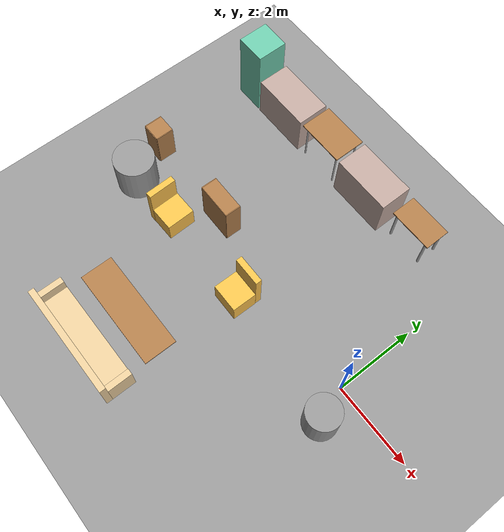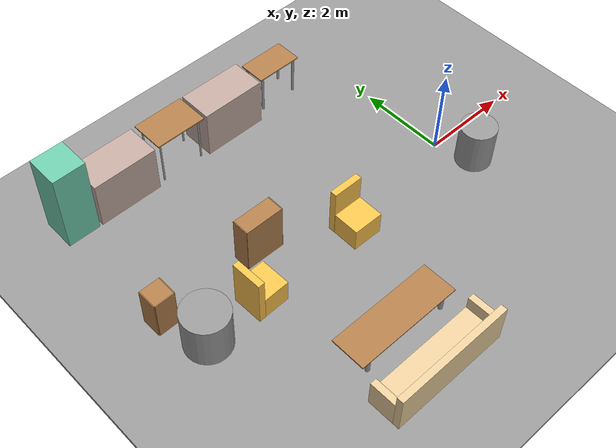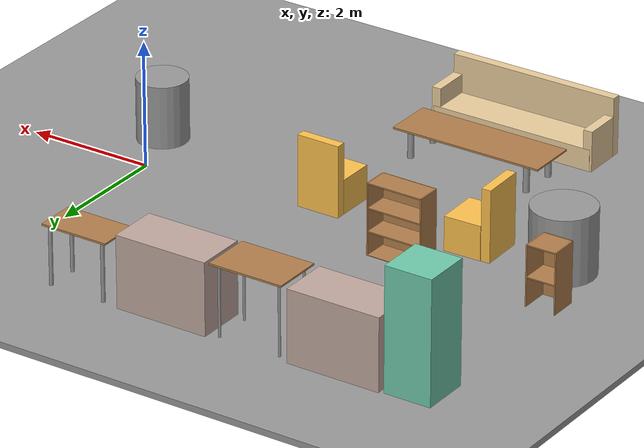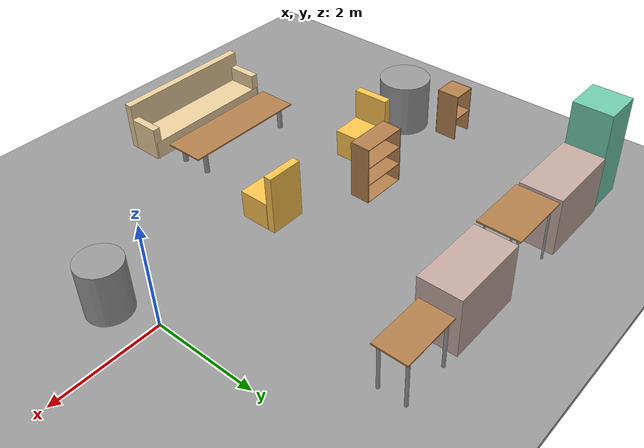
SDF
<sdf version="1.6">
 <world name="default">
  <model name="ground_plane">
   <static>1</static>
   <link name="link">
    <collision name="collision">
     <geometry><plane><normal>0 0 1</normal><size>100 100</size></plane></geometry>
     <surface><friction><ode><mu>100</mu><mu2>50</mu2></ode></friction></surface>
    </collision>
    <visual name="visual">
     <cast_shadows>0</cast_shadows>
     <geometry><plane><normal>0 0 1</normal><size>100 100</size></plane></geometry>
     <material>
      <script><uri>file://media/materials/scripts/gazebo.material</uri><name>Gazebo/Grey</name></script>
     </material>
    </visual>
   </link>
  </model>
  <model name="table_0">
   <link name="link">
    <pose>0.121367 0.101535 0 0 -0 0</pose>
    <inertial>
     <inertia><ixx>0</ixx><ixy>0</ixy><ixz>0</ixz><iyy>0</iyy><iyz>0</iyz><izz>0</izz></inertia>
     <mass>0</mass>
    </inertial>
    <visual name="visual1">
     <pose>0 0 1 0 -0 0</pose>
     <geometry><box><size>1.0961 0.633078 0.03</size></box></geometry>
     <material>
      <script><uri>file://media/materials/scripts/gazebo.material</uri><name>Gazebo/Wood</name></script>
      <shader type="pixel"><normal_map>__default__</normal_map></shader>
      <ambient>1 1 1 1</ambient>
      <diffuse>1 1 1 1</diffuse>
      <specular>0.2 0.2 0.2 1</specular>
      <emissive>0 0 0 1</emissive>
     </material>
    </visual>
    <visual name="front_right_leg">
     <pose>0.45 -0.25 0.5 0 -0 0</pose>
     <geometry><cylinder><radius>0.0304</radius><length>1</length></cylinder></geometry>
     <material>
      <script><uri>file://media/materials/scripts/gazebo.material</uri><name>Gazebo/Grey</name></script>
      <shader type="pixel"><normal_map>__default__</normal_map></shader>
      <ambient>0.3 0.3 0.3 1</ambient>
      <diffuse>0.7 0.7 0.7 1</diffuse>
      <specular>0.01 0.01 0.01 1</specular>
      <emissive>0 0 0 1</emissive>
     </material>
    </visual>
    <visual name="front_left_leg">
     <pose>0.45 0.25 0.5 0 -0 0</pose>
     <geometry><cylinder><radius>0.0304</radius><length>1</length></cylinder></geometry>
     <material>
      <script><uri>file://media/materials/scripts/gazebo.material</uri><name>Gazebo/Grey</name></script>
      <shader type="pixel"><normal_map>__default__</normal_map></shader>
      <ambient>0.3 0.3 0.3 1</ambient>
      <diffuse>0.7 0.7 0.7 1</diffuse>
      <specular>0.01 0.01 0.01 1</specular>
      <emissive>0 0 0 1</emissive>
     </material>
    </visual>
    <visual name="back_right_leg">
     <pose>-0.45 -0.25 0.5 0 -0 0</pose>
     <geometry><cylinder><radius>0.0304</radius><length>1</length></cylinder></geometry>
     <material>
      <script><uri>file://media/materials/scripts/gazebo.material</uri><name>Gazebo/Grey</name></script>
      <shader type="pixel"><normal_map>__default__</normal_map></shader>
      <ambient>0.3 0.3 0.3 1</ambient>
      <diffuse>0.7 0.7 0.7 1</diffuse>
      <specular>0.01 0.01 0.01 1</specular>
      <emissive>0 0 0 1</emissive>
     </material>
    </visual>
    <visual name="back_left_leg">
     <pose>-0.45 0.25 0.5 0 -0 0</pose>
     <geometry><cylinder><radius>0.0304</radius><length>1</length></cylinder></geometry>
     <material>
      <script><uri>file://media/materials/scripts/gazebo.material</uri><name>Gazebo/Grey</name></script>
      <shader type="pixel"><normal_map>__default__</normal_map></shader>
      <ambient>0.3 0.3 0.3 1</ambient>
      <diffuse>0.7 0.7 0.7 1</diffuse>
      <specular>0.01 0.01 0.01 1</specular>
      <emissive>0 0 0 1</emissive>
     </material>
    </visual>
    <collision name="surface">
     <pose>0 0 1 0 -0 0</pose>
     <geometry><box><size>1.0961 0.633078 0.03</size></box></geometry>
     <surface>
      <friction>
       <ode><mu>0.6</mu><mu2>0.6</mu2><fdir1>0 0 0</fdir1><slip1>0</slip1><slip2>0</slip2></ode>
       <torsional>
        <coefficient>1</coefficient>
        <patch_radius>0</patch_radius>
        <surface_radius>0</surface_radius>
        <use_patch_radius>1</use_patch_radius>
        <ode><slip>0</slip></ode>
       </torsional>
      </friction>
      <bounce><restitution_coefficient>0</restitution_coefficient><threshold>1e+06</threshold></bounce>
      <contact>
       <collide_without_contact>0</collide_without_contact>
       <collide_without_contact_bitmask>1</collide_without_contact_bitmask>
       <collide_bitmask>1</collide_bitmask>
       <ode>
        <soft_cfm>0</soft_cfm>
        <soft_erp>0.2</soft_erp>
        <kp>1e+13</kp>
        <kd>1</kd>
        <max_vel>0.01</max_vel>
        <min_depth>0</min_depth>
       </ode>
       <bullet>
        <split_impulse>1</split_impulse>
        <split_impulse_penetration_threshold>-0.01</split_impulse_penetration_threshold>
        <soft_cfm>0</soft_cfm>
        <soft_erp>0.2</soft_erp>
        <kp>1e+13</kp>
        <kd>1</kd>
       </bullet>
      </contact>
     </surface>
    </collision>
    <collision name="front_left_leg">
     <pose>0.45 0.25 0.5 0 -0 0</pose>
     <geometry><cylinder><radius>0.0304</radius><length>1</length></cylinder></geometry>
     <surface>
      <friction>
       <ode><mu>1</mu><mu2>1</mu2><fdir1>0 0 0</fdir1><slip1>0</slip1><slip2>0</slip2></ode>
       <torsional>
        <coefficient>1</coefficient>
        <patch_radius>0</patch_radius>
        <surface_radius>0</surface_radius>
        <use_patch_radius>1</use_patch_radius>
        <ode><slip>0</slip></ode>
       </torsional>
      </friction>
      <bounce><restitution_coefficient>0</restitution_coefficient><threshold>1e+06</threshold></bounce>
      <contact>
       <collide_without_contact>0</collide_without_contact>
       <collide_without_contact_bitmask>1</collide_without_contact_bitmask>
       <collide_bitmask>1</collide_bitmask>
       <ode>
        <soft_cfm>0</soft_cfm>
        <soft_erp>0.2</soft_erp>
        <kp>1e+13</kp>
        <kd>1</kd>
        <max_vel>0.01</max_vel>
        <min_depth>0</min_depth>
       </ode>
       <bullet>
        <split_impulse>1</split_impulse>
        <split_impulse_penetration_threshold>-0.01</split_impulse_penetration_threshold>
        <soft_cfm>0</soft_cfm>
        <soft_erp>0.2</soft_erp>
        <kp>1e+13</kp>
        <kd>1</kd>
       </bullet>
      </contact>
     </surface>
    </collision>
    <collision name="front_right_leg">
     <pose>0.45 -0.25 0.5 0 -0 0</pose>
     <geometry><cylinder><radius>0.0304</radius><length>1</length></cylinder></geometry>
     <surface>
      <friction>
       <ode><mu>1</mu><mu2>1</mu2><fdir1>0 0 0</fdir1><slip1>0</slip1><slip2>0</slip2></ode>
       <torsional>
        <coefficient>1</coefficient>
        <patch_radius>0</patch_radius>
        <surface_radius>0</surface_radius>
        <use_patch_radius>1</use_patch_radius>
        <ode><slip>0</slip></ode>
       </torsional>
      </friction>
      <bounce><restitution_coefficient>0</restitution_coefficient><threshold>1e+06</threshold></bounce>
      <contact>
       <collide_without_contact>0</collide_without_contact>
       <collide_without_contact_bitmask>1</collide_without_contact_bitmask>
       <collide_bitmask>1</collide_bitmask>
       <ode>
        <soft_cfm>0</soft_cfm>
        <soft_erp>0.2</soft_erp>
        <kp>1e+13</kp>
        <kd>1</kd>
        <max_vel>0.01</max_vel>
        <min_depth>0</min_depth>
       </ode>
       <bullet>
        <split_impulse>1</split_impulse>
        <split_impulse_penetration_threshold>-0.01</split_impulse_penetration_threshold>
        <soft_cfm>0</soft_cfm>
        <soft_erp>0.2</soft_erp>
        <kp>1e+13</kp>
        <kd>1</kd>
       </bullet>
      </contact>
     </surface>
    </collision>
    <collision name="back_right_leg">
     <pose>-0.45 -0.25 0.5 0 -0 0</pose>
     <geometry><cylinder><radius>0.0304</radius><length>1</length></cylinder></geometry>
     <surface>
      <friction>
       <ode><mu>1</mu><mu2>1</mu2><fdir1>0 0 0</fdir1><slip1>0</slip1><slip2>0</slip2></ode>
       <torsional>
        <coefficient>1</coefficient>
        <patch_radius>0</patch_radius>
        <surface_radius>0</surface_radius>
        <use_patch_radius>1</use_patch_radius>
        <ode><slip>0</slip></ode>
       </torsional>
      </friction>
      <bounce><restitution_coefficient>0</restitution_coefficient><threshold>1e+06</threshold></bounce>
      <contact>
       <collide_without_contact>0</collide_without_contact>
       <collide_without_contact_bitmask>1</collide_without_contact_bitmask>
       <collide_bitmask>1</collide_bitmask>
       <ode>
        <soft_cfm>0</soft_cfm>
        <soft_erp>0.2</soft_erp>
        <kp>1e+13</kp>
        <kd>1</kd>
        <max_vel>0.01</max_vel>
        <min_depth>0</min_depth>
       </ode>
       <bullet>
        <split_impulse>1</split_impulse>
        <split_impulse_penetration_threshold>-0.01</split_impulse_penetration_threshold>
        <soft_cfm>0</soft_cfm>
        <soft_erp>0.2</soft_erp>
        <kp>1e+13</kp>
        <kd>1</kd>
       </bullet>
      </contact>
     </surface>
    </collision>
    <collision name="back_left_leg">
     <pose>-0.45 0.25 0.5 0 -0 0</pose>
     <geometry><cylinder><radius>0.0304</radius><length>1</length></cylinder></geometry>
     <surface>
      <friction>
       <ode><mu>1</mu><mu2>1</mu2><fdir1>0 0 0</fdir1><slip1>0</slip1><slip2>0</slip2></ode>
       <torsional>
        <coefficient>1</coefficient>
        <patch_radius>0</patch_radius>
        <surface_radius>0</surface_radius>
        <use_patch_radius>1</use_patch_radius>
        <ode><slip>0</slip></ode>
       </torsional>
      </friction>
      <bounce><restitution_coefficient>0</restitution_coefficient><threshold>1e+06</threshold></bounce>
      <contact>
       <collide_without_contact>0</collide_without_contact>
       <collide_without_contact_bitmask>1</collide_without_contact_bitmask>
       <collide_bitmask>1</collide_bitmask>
       <ode>
        <soft_cfm>0</soft_cfm>
        <soft_erp>0.2</soft_erp>
        <kp>1e+13</kp>
        <kd>1</kd>
        <max_vel>0.01</max_vel>
        <min_depth>0</min_depth>
       </ode>
       <bullet>
        <split_impulse>1</split_impulse>
        <split_impulse_penetration_threshold>-0.01</split_impulse_penetration_threshold>
        <soft_cfm>0</soft_cfm>
        <soft_erp>0.2</soft_erp>
        <kp>1e+13</kp>
        <kd>1</kd>
       </bullet>
      </contact>
     </surface>
    </collision>
   </link>
   <static>1</static>
   <pose>-1.71409 3.51433 0 0 -0 0</pose>
  </model>
  <model name="sofa-long">
   <pose>-4.19137 -3.76078 0 0 0 -3.13728</pose>
   <link name="Wall_14">
    <collision name="Wall_14_Collision">
     <geometry><box><size>2.768 0.15 1</size></box></geometry>
     <pose>0 0 0.5 0 -0 0</pose>
    </collision>
    <visual name="Wall_14_Visual">
     <pose>0 0 0.5 0 -0 0</pose>
     <geometry><box><size>2.768 0.15 1</size></box></geometry>
     <material>
      <script><uri>file://media/materials/scripts/gazebo.material</uri><name>Gazebo/Grey</name></script>
      <ambient>0.921569 0.807843 0.615686 1</ambient>
     </material>
     <meta><layer>0</layer></meta>
    </visual>
    <pose>-0.001 0.3025 0 0 -0 0</pose>
   </link>
   <link name="Wall_2">
    <collision name="Wall_2_Collision">
     <geometry><box><size>2.7 0.7 0.4</size></box></geometry>
     <pose>0 0 0.2 0 -0 0</pose>
    </collision>
    <visual name="Wall_2_Visual">
     <pose>0 0 0.2 0 -0 0</pose>
     <geometry><box><size>2.7 0.7 0.4</size></box></geometry>
     <material>
      <script><uri>file://media/materials/scripts/gazebo.material</uri><name>Gazebo/Grey</name></script>
      <ambient>0.921569 0.807843 0.615686 1</ambient>
     </material>
     <meta><layer>0</layer></meta>
    </visual>
    <pose>0 -0.0275 0 0 -0 0</pose>
   </link>
   <link name="Wall_7">
    <collision name="Wall_7_Collision">
     <geometry><box><size>0.6 0.15 0.7</size></box></geometry>
     <pose>0 0 0.35 0 -0 0</pose>
    </collision>
    <visual name="Wall_7_Visual">
     <pose>0 0 0.35 0 -0 0</pose>
     <geometry><box><size>0.6 0.15 0.7</size></box></geometry>
     <material>
      <script><uri>file://media/materials/scripts/gazebo.material</uri><name>Gazebo/Grey</name></script>
      <ambient>0.921569 0.807843 0.615686 1</ambient>
     </material>
     <meta><layer>0</layer></meta>
    </visual>
    <pose>1.31 -0.0725 0 0 0 -1.5708</pose>
   </link>
   <link name="Wall_9">
    <collision name="Wall_9_Collision">
     <geometry><box><size>0.6 0.15 0.7</size></box></geometry>
     <pose>0 0 0.35 0 -0 0</pose>
    </collision>
    <visual name="Wall_9_Visual">
     <pose>0 0 0.35 0 -0 0</pose>
     <geometry><box><size>0.6 0.15 0.7</size></box></geometry>
     <material>
      <script><uri>file://media/materials/scripts/gazebo.material</uri><name>Gazebo/Grey</name></script>
      <ambient>0.921569 0.807843 0.615686 1</ambient>
     </material>
     <meta><layer>0</layer></meta>
    </visual>
    <pose>-1.31 -0.0725 0 0 0 -1.5708</pose>
   </link>
   <static>1</static>
  </model>
  <model name="sofa-short">
   <pose>-2.98811 -0.464462 0 0 0 -0.008223</pose>
   <link name="Wall_0">
    <collision name="Wall_0_Collision">
     <geometry><box><size>0.7 0.6 0.6</size></box></geometry>
     <pose>0 0 0.3 0 -0 0</pose>
    </collision>
    <visual name="Wall_0_Visual">
     <pose>0 0 0.3 0 -0 0</pose>
     <geometry><box><size>0.7 0.6 0.6</size></box></geometry>
     <material>
      <script><uri>file://media/materials/scripts/gazebo.material</uri><name>Gazebo/Grey</name></script>
      <ambient>1 0.764706 0.305882 1</ambient>
     </material>
     <meta><layer>0</layer></meta>
    </visual>
    <pose>0.0025 -0.0775 0 0 -0 0</pose>
   </link>
   <link name="Wall_3">
    <collision name="Wall_3_Collision">
     <geometry><box><size>0.7 0.15 1.2</size></box></geometry>
     <pose>0 0 0.6 0 -0 0</pose>
    </collision>
    <visual name="Wall_3_Visual">
     <pose>0 0 0.6 0 -0 0</pose>
     <geometry><box><size>0.7 0.15 1.2</size></box></geometry>
     <material>
      <script><uri>file://media/materials/scripts/gazebo.material</uri><name>Gazebo/Grey</name></script>
      <ambient>1 0.764706 0.305882 1</ambient>
     </material>
     <meta><layer>0</layer></meta>
    </visual>
    <pose>-0.0025 0.3025 0 0 -0 0</pose>
   </link>
   <static>1</static>
  </model>
  <model name="sofa-short_0">
   <pose>-5.50913 -0.455793 0 0 -0 1.59625</pose>
   <link name="Wall_0">
    <collision name="Wall_0_Collision">
     <geometry><box><size>0.7 0.6 0.6</size></box></geometry>
     <pose>0 0 0.3 0 -0 0</pose>
    </collision>
    <visual name="Wall_0_Visual">
     <pose>0 0 0.3 0 -0 0</pose>
     <geometry><box><size>0.7 0.6 0.6</size></box></geometry>
     <material>
      <script><uri>file://media/materials/scripts/gazebo.material</uri><name>Gazebo/Grey</name></script>
      <ambient>1 0.764706 0.305882 1</ambient>
     </material>
     <meta><layer>0</layer></meta>
    </visual>
    <pose>0.0025 -0.0775 0 0 -0 0</pose>
   </link>
   <link name="Wall_3">
    <collision name="Wall_3_Collision">
     <geometry><box><size>0.7 0.15 1.2</size></box></geometry>
     <pose>0 0 0.6 0 -0 0</pose>
    </collision>
    <visual name="Wall_3_Visual">
     <pose>0 0 0.6 0 -0 0</pose>
     <geometry><box><size>0.7 0.15 1.2</size></box></geometry>
     <material>
      <script><uri>file://media/materials/scripts/gazebo.material</uri><name>Gazebo/Grey</name></script>
      <ambient>1 0.764706 0.305882 1</ambient>
     </material>
     <meta><layer>0</layer></meta>
    </visual>
    <pose>-0.0025 0.3025 0 0 -0 0</pose>
   </link>
   <static>1</static>
  </model>
  <model name="ground_plane_0">
   <static>1</static>
   <link name="link">
    <collision name="collision">
     <geometry><plane><normal>0 0 1</normal><size>100 100</size></plane></geometry>
     <surface>
      <contact><collide_bitmask>65535</collide_bitmask></contact>
      <friction><ode><mu>100</mu><mu2>50</mu2></ode></friction>
     </surface>
    </collision>
    <visual name="visual">
     <cast_shadows>0</cast_shadows>
     <geometry><plane><normal>0 0 1</normal><size>100 100</size></plane></geometry>
     <material>
      <script><uri>file://media/materials/scripts/gazebo.material</uri><name>Gazebo/Grey</name></script>
     </material>
    </visual>
   </link>
   <pose>-4.62932 -2.97943 0 0 -0 0</pose>
  </model>
  <model name="table_self">
   <link name="link">
    <pose>-0.292896 -0.093305 0 0 -0 0</pose>
    <inertial>
     <mass>1</mass>
     <inertia><ixx>1</ixx><ixy>0</ixy><ixz>0</ixz><iyy>1</iyy><iyz>0</iyz><izz>1</izz></inertia>
    </inertial>
    <visual name="visual1">
     <pose>0 0 0.5 0 -0 0</pose>
     <geometry><box><size>2.5 0.8 0.03</size></box></geometry>
     <material>
      <script><uri>file://media/materials/scripts/gazebo.material</uri><name>Gazebo/Wood</name></script>
      <shader type="pixel"><normal_map>__default__</normal_map></shader>
      <ambient>1 1 1 1</ambient>
      <diffuse>1 1 1 1</diffuse>
      <specular>0.2 0.2 0.2 1</specular>
      <emissive>0 0 0 1</emissive>
     </material>
    </visual>
    <visual name="front_left_leg">
     <pose>1 0.3 0.25 0 -0 0</pose>
     <geometry><cylinder><radius>0.05</radius><length>0.5</length></cylinder></geometry>
     <material>
      <script><uri>file://media/materials/scripts/gazebo.material</uri><name>Gazebo/Grey</name></script>
      <shader type="pixel"><normal_map>__default__</normal_map></shader>
      <ambient>0.3 0.3 0.3 1</ambient>
      <diffuse>0.7 0.7 0.7 1</diffuse>
      <specular>0.01 0.01 0.01 1</specular>
      <emissive>0 0 0 1</emissive>
     </material>
    </visual>
    <visual name="front_right_leg">
     <pose>1 -0.3 0.25 0 -0 0</pose>
     <geometry><cylinder><radius>0.05</radius><length>0.5</length></cylinder></geometry>
     <material>
      <script><uri>file://media/materials/scripts/gazebo.material</uri><name>Gazebo/Grey</name></script>
      <shader type="pixel"><normal_map>__default__</normal_map></shader>
      <ambient>0.3 0.3 0.3 1</ambient>
      <diffuse>0.7 0.7 0.7 1</diffuse>
      <specular>0.01 0.01 0.01 1</specular>
      <emissive>0 0 0 1</emissive>
     </material>
    </visual>
    <visual name="back_right_leg">
     <pose>-1 -0.3 0.25 0 -0 0</pose>
     <geometry><cylinder><radius>0.05</radius><length>0.5</length></cylinder></geometry>
     <material>
      <script><uri>file://media/materials/scripts/gazebo.material</uri><name>Gazebo/Grey</name></script>
      <shader type="pixel"><normal_map>__default__</normal_map></shader>
      <ambient>0.3 0.3 0.3 1</ambient>
      <diffuse>0.7 0.7 0.7 1</diffuse>
      <specular>0.01 0.01 0.01 1</specular>
      <emissive>0 0 0 1</emissive>
     </material>
    </visual>
    <visual name="back_left_leg">
     <pose>-1 0.3 0.25 0 -0 0</pose>
     <geometry><cylinder><radius>0.05</radius><length>0.5</length></cylinder></geometry>
     <material>
      <script><uri>file://media/materials/scripts/gazebo.material</uri><name>Gazebo/Grey</name></script>
      <shader type="pixel"><normal_map>__default__</normal_map></shader>
      <ambient>0.3 0.3 0.3 1</ambient>
      <diffuse>0.7 0.7 0.7 1</diffuse>
      <specular>0.01 0.01 0.01 1</specular>
      <emissive>0 0 0 1</emissive>
     </material>
    </visual>
    <collision name="surface">
     <pose>0 0 0.5 0 -0 0</pose>
     <geometry><box><size>2.5 0.8 0.03</size></box></geometry>
     <surface>
      <friction>
       <ode><mu>0.6</mu><mu2>0.6</mu2><fdir1>0 0 0</fdir1><slip1>0</slip1><slip2>0</slip2></ode>
       <torsional>
        <coefficient>1</coefficient>
        <patch_radius>0</patch_radius>
        <surface_radius>0</surface_radius>
        <use_patch_radius>1</use_patch_radius>
        <ode><slip>0</slip></ode>
       </torsional>
      </friction>
      <bounce><restitution_coefficient>0</restitution_coefficient><threshold>1e+06</threshold></bounce>
      <contact>
       <collide_without_contact>0</collide_without_contact>
       <collide_without_contact_bitmask>1</collide_without_contact_bitmask>
       <collide_bitmask>1</collide_bitmask>
       <ode>
        <soft_cfm>0</soft_cfm>
        <soft_erp>0.2</soft_erp>
        <kp>1e+13</kp>
        <kd>1</kd>
        <max_vel>0.01</max_vel>
        <min_depth>0</min_depth>
       </ode>
       <bullet>
        <split_impulse>1</split_impulse>
        <split_impulse_penetration_threshold>-0.01</split_impulse_penetration_threshold>
        <soft_cfm>0</soft_cfm>
        <soft_erp>0.2</soft_erp>
        <kp>1e+13</kp>
        <kd>1</kd>
       </bullet>
      </contact>
     </surface>
    </collision>
    <collision name="front_left_leg">
     <pose>1 0.3 0.25 0 -0 0</pose>
     <geometry><cylinder><radius>0.05</radius><length>0.5</length></cylinder></geometry>
     <surface>
      <friction>
       <ode><mu>1</mu><mu2>1</mu2><fdir1>0 0 0</fdir1><slip1>0</slip1><slip2>0</slip2></ode>
       <torsional>
        <coefficient>1</coefficient>
        <patch_radius>0</patch_radius>
        <surface_radius>0</surface_radius>
        <use_patch_radius>1</use_patch_radius>
        <ode><slip>0</slip></ode>
       </torsional>
      </friction>
      <bounce><restitution_coefficient>0</restitution_coefficient><threshold>1e+06</threshold></bounce>
      <contact>
       <collide_without_contact>0</collide_without_contact>
       <collide_without_contact_bitmask>1</collide_without_contact_bitmask>
       <collide_bitmask>1</collide_bitmask>
       <ode>
        <soft_cfm>0</soft_cfm>
        <soft_erp>0.2</soft_erp>
        <kp>1e+13</kp>
        <kd>1</kd>
        <max_vel>0.01</max_vel>
        <min_depth>0</min_depth>
       </ode>
       <bullet>
        <split_impulse>1</split_impulse>
        <split_impulse_penetration_threshold>-0.01</split_impulse_penetration_threshold>
        <soft_cfm>0</soft_cfm>
        <soft_erp>0.2</soft_erp>
        <kp>1e+13</kp>
        <kd>1</kd>
       </bullet>
      </contact>
     </surface>
    </collision>
    <collision name="front_right_leg">
     <pose>1 -0.3 0.25 0 -0 0</pose>
     <geometry><cylinder><radius>0.05</radius><length>0.5</length></cylinder></geometry>
     <surface>
      <friction>
       <ode><mu>1</mu><mu2>1</mu2><fdir1>0 0 0</fdir1><slip1>0</slip1><slip2>0</slip2></ode>
       <torsional>
        <coefficient>1</coefficient>
        <patch_radius>0</patch_radius>
        <surface_radius>0</surface_radius>
        <use_patch_radius>1</use_patch_radius>
        <ode><slip>0</slip></ode>
       </torsional>
      </friction>
      <bounce><restitution_coefficient>0</restitution_coefficient><threshold>1e+06</threshold></bounce>
      <contact>
       <collide_without_contact>0</collide_without_contact>
       <collide_without_contact_bitmask>1</collide_without_contact_bitmask>
       <collide_bitmask>1</collide_bitmask>
       <ode>
        <soft_cfm>0</soft_cfm>
        <soft_erp>0.2</soft_erp>
        <kp>1e+13</kp>
        <kd>1</kd>
        <max_vel>0.01</max_vel>
        <min_depth>0</min_depth>
       </ode>
       <bullet>
        <split_impulse>1</split_impulse>
        <split_impulse_penetration_threshold>-0.01</split_impulse_penetration_threshold>
        <soft_cfm>0</soft_cfm>
        <soft_erp>0.2</soft_erp>
        <kp>1e+13</kp>
        <kd>1</kd>
       </bullet>
      </contact>
     </surface>
    </collision>
    <collision name="back_right_leg">
     <pose>-1 -0.3 0.25 0 -0 0</pose>
     <geometry><cylinder><radius>0.05</radius><length>0.5</length></cylinder></geometry>
     <surface>
      <friction>
       <ode><mu>1</mu><mu2>1</mu2><fdir1>0 0 0</fdir1><slip1>0</slip1><slip2>0</slip2></ode>
       <torsional>
        <coefficient>1</coefficient>
        <patch_radius>0</patch_radius>
        <surface_radius>0</surface_radius>
        <use_patch_radius>1</use_patch_radius>
        <ode><slip>0</slip></ode>
       </torsional>
      </friction>
      <bounce><restitution_coefficient>0</restitution_coefficient><threshold>1e+06</threshold></bounce>
      <contact>
       <collide_without_contact>0</collide_without_contact>
       <collide_without_contact_bitmask>1</collide_without_contact_bitmask>
       <collide_bitmask>1</collide_bitmask>
       <ode>
        <soft_cfm>0</soft_cfm>
        <soft_erp>0.2</soft_erp>
        <kp>1e+13</kp>
        <kd>1</kd>
        <max_vel>0.01</max_vel>
        <min_depth>0</min_depth>
       </ode>
       <bullet>
        <split_impulse>1</split_impulse>
        <split_impulse_penetration_threshold>-0.01</split_impulse_penetration_threshold>
        <soft_cfm>0</soft_cfm>
        <soft_erp>0.2</soft_erp>
        <kp>1e+13</kp>
        <kd>1</kd>
       </bullet>
      </contact>
     </surface>
    </collision>
    <collision name="back_left_leg">
     <pose>-1 0.3 0.25 0 -0 0</pose>
     <geometry><cylinder><radius>0.05</radius><length>0.5</length></cylinder></geometry>
     <surface>
      <friction>
       <ode><mu>1</mu><mu2>1</mu2><fdir1>0 0 0</fdir1><slip1>0</slip1><slip2>0</slip2></ode>
       <torsional>
        <coefficient>1</coefficient>
        <patch_radius>0</patch_radius>
        <surface_radius>0</surface_radius>
        <use_patch_radius>1</use_patch_radius>
        <ode><slip>0</slip></ode>
       </torsional>
      </friction>
      <bounce><restitution_coefficient>0</restitution_coefficient><threshold>1e+06</threshold></bounce>
      <contact>
       <collide_without_contact>0</collide_without_contact>
       <collide_without_contact_bitmask>1</collide_without_contact_bitmask>
       <collide_bitmask>1</collide_bitmask>
       <ode>
        <soft_cfm>0</soft_cfm>
        <soft_erp>0.2</soft_erp>
        <kp>1e+13</kp>
        <kd>1</kd>
        <max_vel>0.01</max_vel>
        <min_depth>0</min_depth>
       </ode>
       <bullet>
        <split_impulse>1</split_impulse>
        <split_impulse_penetration_threshold>-0.01</split_impulse_penetration_threshold>
        <soft_cfm>0</soft_cfm>
        <soft_erp>0.2</soft_erp>
        <kp>1e+13</kp>
        <kd>1</kd>
       </bullet>
      </contact>
     </surface>
    </collision>
   </link>
   <static>1</static>
   <pose>-3.83013 -2.53539 0 0 -0 0</pose>
  </model>
  <model name="cabinet">
   <static>1</static>
   <link name="cabinet_bottom_plate">
    <inertial>
     <pose>0 0 -1 0 -0 0</pose>
     <inertia><ixx>2.05</ixx><ixy>0</ixy><ixz>0</ixz><iyy>2.05</iyy><iyz>0</iyz><izz>2.05</izz></inertia>
     <mass>25</mass>
    </inertial>
    <collision name="cabinet_bottom_plate_geom">
     <pose>0 0 0.01 0 -0 0</pose>
     <geometry><box><size>0.45 0.45 0.02</size></box></geometry>
    </collision>
    <visual name="cabinet_bottom_plate_geom_visual">
     <pose>0 0 0.01 0 -0 0</pose>
     <geometry><box><size>0.45 0.45 0.02</size></box></geometry>
     <material>
      <script><uri>file://media/materials/scripts/gazebo.material</uri><name>Gazebo/Wood</name></script>
     </material>
    </visual>
    <collision name="cabinet_bottom_plate_geom_cabinet_back_plate">
     <pose>0.235 0 0.51 0 -0 0</pose>
     <geometry><box><size>0.02 0.45 1.02</size></box></geometry>
    </collision>
    <visual name="cabinet_bottom_plate_geom_cabinet_back_plate_visual">
     <pose>0.235 0 0.51 0 -0 0</pose>
     <geometry><box><size>0.02 0.45 1.02</size></box></geometry>
     <material>
      <script><uri>file://media/materials/scripts/gazebo.material</uri><name>Gazebo/Wood</name></script>
     </material>
    </visual>
    <collision name="cabinet_bottom_plate_geom_cabinet_left_plate">
     <pose>0 0.235 0.51 0 -0 0</pose>
     <geometry><box><size>0.45 0.02 1.02</size></box></geometry>
    </collision>
    <visual name="cabinet_bottom_plate_geom_cabinet_left_plate_visual">
     <pose>0 0.235 0.51 0 -0 0</pose>
     <geometry><box><size>0.45 0.02 1.02</size></box></geometry>
     <material>
      <script><uri>file://media/materials/scripts/gazebo.material</uri><name>Gazebo/Wood</name></script>
     </material>
    </visual>
    <collision name="cabinet_bottom_plate_geom_cabinet_middle_plate">
     <pose>0 0 0.51 0 -0 0</pose>
     <geometry><box><size>0.45 0.45 0.02</size></box></geometry>
    </collision>
    <visual name="cabinet_bottom_plate_geom_cabinet_middle_plate_visual">
     <pose>0 0 0.51 0 -0 0</pose>
     <geometry><box><size>0.45 0.45 0.02</size></box></geometry>
     <material>
      <script><uri>file://media/materials/scripts/gazebo.material</uri><name>Gazebo/Wood</name></script>
     </material>
    </visual>
    <collision name="cabinet_bottom_plate_geom_cabinet_right_plate">
     <pose>0 -0.235 0.51 0 -0 0</pose>
     <geometry><box><size>0.45 0.02 1.02</size></box></geometry>
    </collision>
    <visual name="cabinet_bottom_plate_geom_cabinet_right_plate_visual">
     <pose>0 -0.235 0.51 0 -0 0</pose>
     <geometry><box><size>0.45 0.02 1.02</size></box></geometry>
     <material>
      <script><uri>file://media/materials/scripts/gazebo.material</uri><name>Gazebo/Wood</name></script>
     </material>
    </visual>
    <collision name="cabinet_bottom_plate_geom_cabinet_top_plate">
     <pose>0 0 1.01 0 -0 0</pose>
     <geometry><box><size>0.45 0.45 0.02</size></box></geometry>
    </collision>
    <visual name="cabinet_bottom_plate_geom_cabinet_top_plate_visual">
     <pose>0 0 1.01 0 -0 0</pose>
     <geometry><box><size>0.45 0.45 0.02</size></box></geometry>
     <material>
      <script><uri>file://media/materials/scripts/gazebo.material</uri><name>Gazebo/Wood</name></script>
     </material>
    </visual>
   </link>
   <pose>-7.23742 0.47306 0 0 0 -1.56844</pose>
  </model>
  <model name="bookshelf_0">
   <static>1</static>
   <link name="link">
    <inertial><mass>1</mass></inertial>
    <collision name="back">
     <pose>0 0.005 0.6 0 -0 0</pose>
     <geometry><box><size>0.9 0.01 1.2</size></box></geometry>
    </collision>
    <visual name="visual1">
     <pose>0 0.005 0.6 0 -0 0</pose>
     <geometry><box><size>0.9 0.01 1.2</size></box></geometry>
     <material>
      <script><uri>file://media/materials/scripts/gazebo.material</uri><name>Gazebo/Wood</name></script>
     </material>
    </visual>
    <collision name="left_side">
     <pose>0.45 -0.195 0.6 0 -0 0</pose>
     <geometry><box><size>0.02 0.4 1.2</size></box></geometry>
    </collision>
    <visual name="visual2">
     <pose>0.45 -0.195 0.6 0 -0 0</pose>
     <geometry><box><size>0.02 0.4 1.2</size></box></geometry>
     <material>
      <script><uri>file://media/materials/scripts/gazebo.material</uri><name>Gazebo/Wood</name></script>
     </material>
    </visual>
    <collision name="right_side">
     <pose>-0.45 -0.195 0.6 0 -0 0</pose>
     <geometry><box><size>0.02 0.4 1.2</size></box></geometry>
    </collision>
    <visual name="visual3">
     <pose>-0.45 -0.195 0.6 0 -0 0</pose>
     <geometry><box><size>0.02 0.4 1.2</size></box></geometry>
     <material>
      <script><uri>file://media/materials/scripts/gazebo.material</uri><name>Gazebo/Wood</name></script>
     </material>
    </visual>
    <collision name="bottom">
     <pose>0 -0.195 0.03 0 -0 0</pose>
     <geometry><box><size>0.88 0.4 0.06</size></box></geometry>
    </collision>
    <visual name="visual4">
     <pose>0 -0.195 0.03 0 -0 0</pose>
     <geometry><box><size>0.88 0.4 0.06</size></box></geometry>
     <material>
      <script><uri>file://media/materials/scripts/gazebo.material</uri><name>Gazebo/Wood</name></script>
     </material>
    </visual>
    <collision name="top">
     <pose>0 -0.195 1.19 0 -0 0</pose>
     <geometry><box><size>0.88 0.4 0.02</size></box></geometry>
    </collision>
    <visual name="visual5">
     <pose>0 -0.195 1.19 0 -0 0</pose>
     <geometry><box><size>0.88 0.4 0.02</size></box></geometry>
     <material>
      <script><uri>file://media/materials/scripts/gazebo.material</uri><name>Gazebo/Wood</name></script>
     </material>
    </visual>
    <collision name="low_shelf">
     <pose>0 -0.195 0.43 0 -0 0</pose>
     <geometry><box><size>0.88 0.4 0.02</size></box></geometry>
    </collision>
    <visual name="visual6">
     <pose>0 -0.195 0.43 0 -0 0</pose>
     <geometry><box><size>0.88 0.4 0.02</size></box></geometry>
     <material>
      <script><uri>file://media/materials/scripts/gazebo.material</uri><name>Gazebo/Wood</name></script>
     </material>
    </visual>
    <collision name="high_shelf">
     <pose>0 -0.195 0.8 0 -0 0</pose>
     <geometry><box><size>0.88 0.4 0.02</size></box></geometry>
    </collision>
    <visual name="visual7">
     <pose>0 -0.195 0.8 0 -0 0</pose>
     <geometry><box><size>0.88 0.4 0.02</size></box></geometry>
     <material>
      <script><uri>file://media/materials/scripts/gazebo.material</uri><name>Gazebo/Wood</name></script>
     </material>
    </visual>
   </link>
   <pose>-4.77235 0.251386 0 0 -0 3.13194</pose>
  </model>
  <model name="refridge">
   <pose>-7.11406 3.50447 0 0 -0 0</pose>
   <link name="Wall_0">
    <collision name="Wall_0_Collision">
     <geometry><box><size>0.76 0.75 2</size></box></geometry>
     <pose>0 0 1 0 -0 0</pose>
    </collision>
    <visual name="Wall_0_Visual">
     <pose>0 0 1 0 -0 0</pose>
     <geometry><box><size>0.76 0.75 2</size></box></geometry>
     <material>
      <script><uri>file://media/materials/scripts/gazebo.material</uri><name>Gazebo/Grey</name></script>
      <ambient>0.435294 0.796078 0.67451 1</ambient>
     </material>
     <meta><layer>0</layer></meta>
    </visual>
    <pose>0 0 0 0 0 -1.5708</pose>
   </link>
   <static>1</static>
  </model>
  <model name="zaotai">
   <pose>-5.92751 3.51864 0 0 -0 0</pose>
   <link name="Wall_2">
    <collision name="Wall_2_Collision">
     <geometry><box><size>1.5 0.8 1.2</size></box></geometry>
     <pose>0 0 0.6 0 -0 0</pose>
    </collision>
    <visual name="Wall_2_Visual">
     <pose>0 0 0.6 0 -0 0</pose>
     <geometry><box><size>1.5 0.8 1.2</size></box></geometry>
     <material>
      <script><uri>file://media/materials/scripts/gazebo.material</uri><name>Gazebo/Grey</name></script>
      <ambient>0.760784 0.662745 0.627451 1</ambient>
     </material>
     <meta><layer>0</layer></meta>
    </visual>
   </link>
   <static>1</static>
  </model>
  <model name="zaotai_0">
   <pose>-3.066 3.52357 0 0 -0 0</pose>
   <link name="Wall_2">
    <collision name="Wall_2_Collision">
     <geometry><box><size>1.5 0.8 1.2</size></box></geometry>
     <pose>0 0 0.6 0 -0 0</pose>
    </collision>
    <visual name="Wall_2_Visual">
     <pose>0 0 0.6 0 -0 0</pose>
     <geometry><box><size>1.5 0.8 1.2</size></box></geometry>
     <material>
      <script><uri>file://media/materials/scripts/gazebo.material</uri><name>Gazebo/Grey</name></script>
      <ambient>0.760784 0.662745 0.627451 1</ambient>
     </material>
     <meta><layer>0</layer></meta>
    </visual>
   </link>
   <static>1</static>
  </model>
  <model name="table_2">
   <link name="link">
    <pose>0 1.18562 0 0 -0 0</pose>
    <inertial>
     <mass>1</mass>
     <inertia><ixx>1</ixx><ixy>0</ixy><ixz>0</ixz><iyy>1</iyy><iyz>0</iyz><izz>1</izz></inertia>
    </inertial>
    <visual name="visual1">
     <pose>0 0 1.2 0 -0 0</pose>
     <geometry><box><size>1.2 0.8 0.03</size></box></geometry>
     <material>
      <script><uri>file://media/materials/scripts/gazebo.material</uri><name>Gazebo/Wood</name></script>
      <shader type="pixel"><normal_map>__default__</normal_map></shader>
      <ambient>1 1 1 1</ambient>
      <diffuse>1 1 1 1</diffuse>
      <specular>0.2 0.2 0.2 1</specular>
      <emissive>0 0 0 1</emissive>
     </material>
    </visual>
    <visual name="front_left_leg">
     <pose>0.5 0.3 0.6 0 -0 0</pose>
     <geometry><cylinder><radius>0.02</radius><length>1.2</length></cylinder></geometry>
     <material>
      <script><uri>file://media/materials/scripts/gazebo.material</uri><name>Gazebo/Grey</name></script>
      <shader type="pixel"><normal_map>__default__</normal_map></shader>
      <ambient>0.3 0.3 0.3 1</ambient>
      <diffuse>0.7 0.7 0.7 1</diffuse>
      <specular>0.01 0.01 0.01 1</specular>
      <emissive>0 0 0 1</emissive>
     </material>
    </visual>
    <visual name="front_right_leg">
     <pose>0.5 -0.3 0.6 0 -0 0</pose>
     <geometry><cylinder><radius>0.02</radius><length>1.2</length></cylinder></geometry>
     <material>
      <script><uri>file://media/materials/scripts/gazebo.material</uri><name>Gazebo/Grey</name></script>
      <shader type="pixel"><normal_map>__default__</normal_map></shader>
      <ambient>0.3 0.3 0.3 1</ambient>
      <diffuse>0.7 0.7 0.7 1</diffuse>
      <specular>0.01 0.01 0.01 1</specular>
      <emissive>0 0 0 1</emissive>
     </material>
    </visual>
    <visual name="back_right_leg">
     <pose>-0.5 -0.3 0.6 0 -0 0</pose>
     <geometry><cylinder><radius>0.02</radius><length>1.2</length></cylinder></geometry>
     <material>
      <script><uri>file://media/materials/scripts/gazebo.material</uri><name>Gazebo/Grey</name></script>
      <shader type="pixel"><normal_map>__default__</normal_map></shader>
      <ambient>0.3 0.3 0.3 1</ambient>
      <diffuse>0.7 0.7 0.7 1</diffuse>
      <specular>0.01 0.01 0.01 1</specular>
      <emissive>0 0 0 1</emissive>
     </material>
    </visual>
    <visual name="back_left_leg">
     <pose>-0.5 0.3 0.6 0 -0 0</pose>
     <geometry><cylinder><radius>0.02</radius><length>1.2</length></cylinder></geometry>
     <material>
      <script><uri>file://media/materials/scripts/gazebo.material</uri><name>Gazebo/Grey</name></script>
      <shader type="pixel"><normal_map>__default__</normal_map></shader>
      <ambient>0.3 0.3 0.3 1</ambient>
      <diffuse>0.7 0.7 0.7 1</diffuse>
      <specular>0.01 0.01 0.01 1</specular>
      <emissive>0 0 0 1</emissive>
     </material>
    </visual>
    <collision name="surface">
     <pose>0 0 1.2 0 -0 0</pose>
     <geometry><box><size>1.2 0.8 0.03</size></box></geometry>
     <surface>
      <friction>
       <ode><mu>0.6</mu><mu2>0.6</mu2><fdir1>0 0 0</fdir1><slip1>0</slip1><slip2>0</slip2></ode>
       <torsional>
        <coefficient>1</coefficient>
        <patch_radius>0</patch_radius>
        <surface_radius>0</surface_radius>
        <use_patch_radius>1</use_patch_radius>
        <ode><slip>0</slip></ode>
       </torsional>
      </friction>
      <bounce><restitution_coefficient>0</restitution_coefficient><threshold>1e+06</threshold></bounce>
      <contact>
       <collide_without_contact>0</collide_without_contact>
       <collide_without_contact_bitmask>1</collide_without_contact_bitmask>
       <collide_bitmask>1</collide_bitmask>
       <ode>
        <soft_cfm>0</soft_cfm>
        <soft_erp>0.2</soft_erp>
        <kp>1e+13</kp>
        <kd>1</kd>
        <max_vel>0.01</max_vel>
        <min_depth>0</min_depth>
       </ode>
       <bullet>
        <split_impulse>1</split_impulse>
        <split_impulse_penetration_threshold>-0.01</split_impulse_penetration_threshold>
        <soft_cfm>0</soft_cfm>
        <soft_erp>0.2</soft_erp>
        <kp>1e+13</kp>
        <kd>1</kd>
       </bullet>
      </contact>
     </surface>
    </collision>
    <collision name="front_left_leg">
     <pose>0.5 0.3 0.6 0 -0 0</pose>
     <geometry><cylinder><radius>0.02</radius><length>1.2</length></cylinder></geometry>
     <surface>
      <friction>
       <ode><mu>1</mu><mu2>1</mu2><fdir1>0 0 0</fdir1><slip1>0</slip1><slip2>0</slip2></ode>
       <torsional>
        <coefficient>1</coefficient>
        <patch_radius>0</patch_radius>
        <surface_radius>0</surface_radius>
        <use_patch_radius>1</use_patch_radius>
        <ode><slip>0</slip></ode>
       </torsional>
      </friction>
      <bounce><restitution_coefficient>0</restitution_coefficient><threshold>1e+06</threshold></bounce>
      <contact>
       <collide_without_contact>0</collide_without_contact>
       <collide_without_contact_bitmask>1</collide_without_contact_bitmask>
       <collide_bitmask>1</collide_bitmask>
       <ode>
        <soft_cfm>0</soft_cfm>
        <soft_erp>0.2</soft_erp>
        <kp>1e+13</kp>
        <kd>1</kd>
        <max_vel>0.01</max_vel>
        <min_depth>0</min_depth>
       </ode>
       <bullet>
        <split_impulse>1</split_impulse>
        <split_impulse_penetration_threshold>-0.01</split_impulse_penetration_threshold>
        <soft_cfm>0</soft_cfm>
        <soft_erp>0.2</soft_erp>
        <kp>1e+13</kp>
        <kd>1</kd>
       </bullet>
      </contact>
     </surface>
    </collision>
    <collision name="back_right_leg">
     <pose>-0.5 -0.3 0.6 0 -0 0</pose>
     <geometry><cylinder><radius>0.02</radius><length>1.2</length></cylinder></geometry>
     <surface>
      <friction>
       <ode><mu>1</mu><mu2>1</mu2><fdir1>0 0 0</fdir1><slip1>0</slip1><slip2>0</slip2></ode>
       <torsional>
        <coefficient>1</coefficient>
        <patch_radius>0</patch_radius>
        <surface_radius>0</surface_radius>
        <use_patch_radius>1</use_patch_radius>
        <ode><slip>0</slip></ode>
       </torsional>
      </friction>
      <bounce><restitution_coefficient>0</restitution_coefficient><threshold>1e+06</threshold></bounce>
      <contact>
       <collide_without_contact>0</collide_without_contact>
       <collide_without_contact_bitmask>1</collide_without_contact_bitmask>
       <collide_bitmask>1</collide_bitmask>
       <ode>
        <soft_cfm>0</soft_cfm>
        <soft_erp>0.2</soft_erp>
        <kp>1e+13</kp>
        <kd>1</kd>
        <max_vel>0.01</max_vel>
        <min_depth>0</min_depth>
       </ode>
       <bullet>
        <split_impulse>1</split_impulse>
        <split_impulse_penetration_threshold>-0.01</split_impulse_penetration_threshold>
        <soft_cfm>0</soft_cfm>
        <soft_erp>0.2</soft_erp>
        <kp>1e+13</kp>
        <kd>1</kd>
       </bullet>
      </contact>
     </surface>
    </collision>
    <collision name="front_right_leg">
     <pose>0.5 -0.3 0.6 0 -0 0</pose>
     <geometry><cylinder><radius>0.02</radius><length>1.2</length></cylinder></geometry>
     <surface>
      <friction>
       <ode><mu>1</mu><mu2>1</mu2><fdir1>0 0 0</fdir1><slip1>0</slip1><slip2>0</slip2></ode>
       <torsional>
        <coefficient>1</coefficient>
        <patch_radius>0</patch_radius>
        <surface_radius>0</surface_radius>
        <use_patch_radius>1</use_patch_radius>
        <ode><slip>0</slip></ode>
       </torsional>
      </friction>
      <bounce><restitution_coefficient>0</restitution_coefficient><threshold>1e+06</threshold></bounce>
      <contact>
       <collide_without_contact>0</collide_without_contact>
       <collide_without_contact_bitmask>1</collide_without_contact_bitmask>
       <collide_bitmask>1</collide_bitmask>
       <ode>
        <soft_cfm>0</soft_cfm>
        <soft_erp>0.2</soft_erp>
        <kp>1e+13</kp>
        <kd>1</kd>
        <max_vel>0.01</max_vel>
        <min_depth>0</min_depth>
       </ode>
       <bullet>
        <split_impulse>1</split_impulse>
        <split_impulse_penetration_threshold>-0.01</split_impulse_penetration_threshold>
        <soft_cfm>0</soft_cfm>
        <soft_erp>0.2</soft_erp>
        <kp>1e+13</kp>
        <kd>1</kd>
       </bullet>
      </contact>
     </surface>
    </collision>
    <collision name="back_left_leg">
     <pose>-0.5 0.3 0.6 0 -0 0</pose>
     <geometry><cylinder><radius>0.02</radius><length>1.2</length></cylinder></geometry>
     <surface>
      <friction>
       <ode><mu>1</mu><mu2>1</mu2><fdir1>0 0 0</fdir1><slip1>0</slip1><slip2>0</slip2></ode>
       <torsional>
        <coefficient>1</coefficient>
        <patch_radius>0</patch_radius>
        <surface_radius>0</surface_radius>
        <use_patch_radius>1</use_patch_radius>
        <ode><slip>0</slip></ode>
       </torsional>
      </friction>
      <bounce><restitution_coefficient>0</restitution_coefficient><threshold>1e+06</threshold></bounce>
      <contact>
       <collide_without_contact>0</collide_without_contact>
       <collide_without_contact_bitmask>1</collide_without_contact_bitmask>
       <collide_bitmask>1</collide_bitmask>
       <ode>
        <soft_cfm>0</soft_cfm>
        <soft_erp>0.2</soft_erp>
        <kp>1e+13</kp>
        <kd>1</kd>
        <max_vel>0.01</max_vel>
        <min_depth>0</min_depth>
       </ode>
       <bullet>
        <split_impulse>1</split_impulse>
        <split_impulse_penetration_threshold>-0.01</split_impulse_penetration_threshold>
        <soft_cfm>0</soft_cfm>
        <soft_erp>0.2</soft_erp>
        <kp>1e+13</kp>
        <kd>1</kd>
       </bullet>
      </contact>
     </surface>
    </collision>
   </link>
   <static>1</static>
   <pose>-4.48505 2.32969 0 0 -0 0</pose>
  </model>
  <model name="round_0">
   <link name="link_0">
    <pose>2.06532 0.02568 0.5 0 -0 0</pose>
    <inertial>
     <mass>1</mass>
     <inertia><ixx>0.145833</ixx><ixy>0</ixy><ixz>0</ixz><iyy>0.145833</iyy><iyz>0</iyz><izz>0.125</izz></inertia>
    </inertial>
    <visual name="visual">
     <geometry><cylinder><radius>0.4</radius><length>1.1</length></cylinder></geometry>
     <material>
      <lighting>1</lighting>
      <script><uri>file://media/materials/scripts/gazebo.material</uri><name>Gazebo/Grey</name></script>
      <shader type="pixel"><normal_map>__default__</normal_map></shader>
      <ambient>0.3 0.3 0.3 1</ambient>
      <diffuse>0.7 0.7 0.7 1</diffuse>
      <specular>0.01 0.01 0.01 1</specular>
      <emissive>0 0 0 1</emissive>
     </material>
    </visual>
    <collision name="collision">
     <geometry><cylinder><radius>0.4</radius><length>1.1</length></cylinder></geometry>
     <surface>
      <friction>
       <ode><mu>1</mu><mu2>1</mu2><fdir1>0 0 0</fdir1><slip1>0</slip1><slip2>0</slip2></ode>
       <torsional>
        <coefficient>1</coefficient>
        <patch_radius>0</patch_radius>
        <surface_radius>0</surface_radius>
        <use_patch_radius>1</use_patch_radius>
        <ode><slip>0</slip></ode>
       </torsional>
      </friction>
      <bounce><restitution_coefficient>0</restitution_coefficient><threshold>1e+06</threshold></bounce>
      <contact>
       <collide_without_contact>0</collide_without_contact>
       <collide_without_contact_bitmask>1</collide_without_contact_bitmask>
       <collide_bitmask>1</collide_bitmask>
       <ode>
        <soft_cfm>0</soft_cfm>
        <soft_erp>0.2</soft_erp>
        <kp>1e+13</kp>
        <kd>1</kd>
        <max_vel>0.01</max_vel>
        <min_depth>0</min_depth>
       </ode>
       <bullet>
        <split_impulse>1</split_impulse>
        <split_impulse_penetration_threshold>-0.01</split_impulse_penetration_threshold>
        <soft_cfm>0</soft_cfm>
        <soft_erp>0.2</soft_erp>
        <kp>1e+13</kp>
        <kd>1</kd>
       </bullet>
      </contact>
     </surface>
    </collision>
   </link>
   <static>1</static>
   <pose>-1.78852 -0.854958 0 0 -0 0</pose>
  </model>
  <model name="round_1">
   <link name="link_0">
    <pose>2.47626 -0.202756 0.5 0 -0 0</pose>
    <inertial>
     <mass>1</mass>
     <inertia><ixx>0.145833</ixx><ixy>0</ixy><ixz>0</ixz><iyy>0.145833</iyy><iyz>0</iyz><izz>0.125</izz></inertia>
    </inertial>
    <visual name="visual">
     <geometry><cylinder><radius>0.5</radius><length>1.2</length></cylinder></geometry>
     <material>
      <lighting>1</lighting>
      <script><uri>file://media/materials/scripts/gazebo.material</uri><name>Gazebo/Grey</name></script>
      <shader type="pixel"><normal_map>__default__</normal_map></shader>
      <ambient>0.3 0.3 0.3 1</ambient>
      <diffuse>0.7 0.7 0.7 1</diffuse>
      <specular>0.01 0.01 0.01 1</specular>
      <emissive>0 0 0 1</emissive>
     </material>
    </visual>
    <collision name="collision">
     <geometry><cylinder><radius>0.5</radius><length>1.2</length></cylinder></geometry>
     <surface>
      <friction>
       <ode><mu>1</mu><mu2>1</mu2><fdir1>0 0 0</fdir1><slip1>0</slip1><slip2>0</slip2></ode>
       <torsional>
        <coefficient>1</coefficient>
        <patch_radius>0</patch_radius>
        <surface_radius>0</surface_radius>
        <use_patch_radius>1</use_patch_radius>
        <ode><slip>0</slip></ode>
       </torsional>
      </friction>
      <bounce><restitution_coefficient>0</restitution_coefficient><threshold>1e+06</threshold></bounce>
      <contact>
       <collide_without_contact>0</collide_without_contact>
       <collide_without_contact_bitmask>1</collide_without_contact_bitmask>
       <collide_bitmask>1</collide_bitmask>
       <ode>
        <soft_cfm>0</soft_cfm>
        <soft_erp>0.2</soft_erp>
        <kp>1e+13</kp>
        <kd>1</kd>
        <max_vel>0.01</max_vel>
        <min_depth>0</min_depth>
       </ode>
       <bullet>
        <split_impulse>1</split_impulse>
        <split_impulse_penetration_threshold>-0.01</split_impulse_penetration_threshold>
        <soft_cfm>0</soft_cfm>
        <soft_erp>0.2</soft_erp>
        <kp>1e+13</kp>
        <kd>1</kd>
       </bullet>
      </contact>
     </surface>
    </collision>
   </link>
   <static>1</static>
   <pose>-9.3581 -0.289536 0 0 -0 0</pose>
  </model>
 </world>
</sdf>
